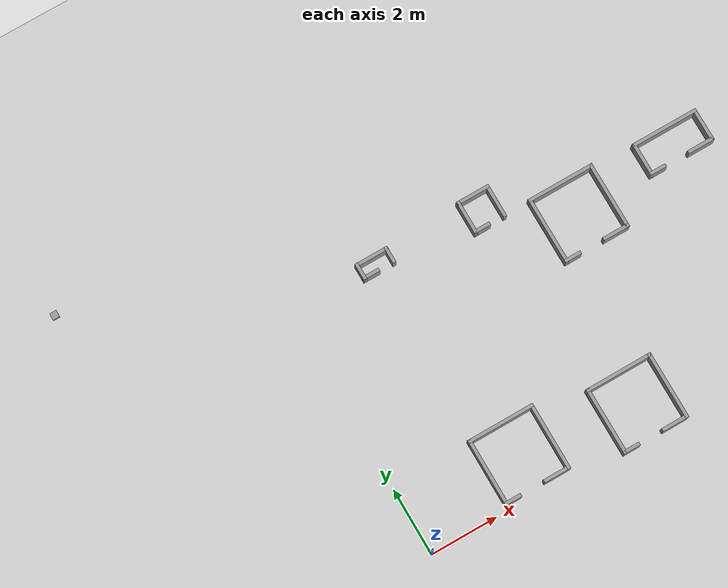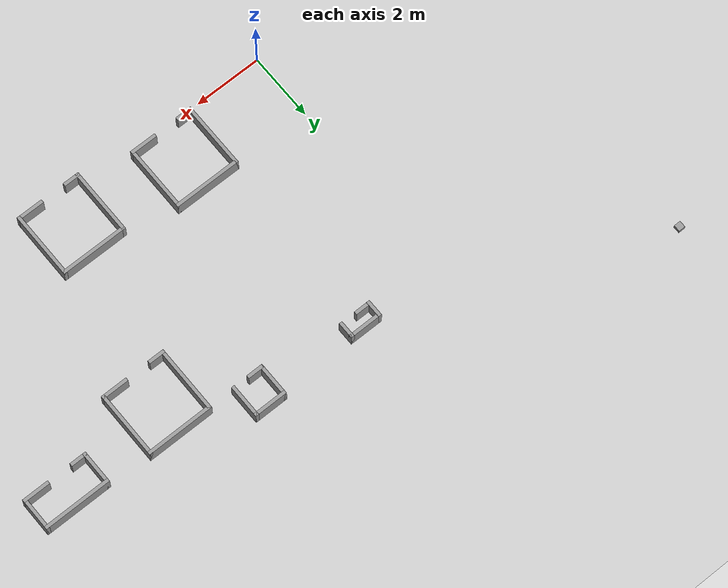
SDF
<sdf version="1.6">
 <world name="default">
  <model name="ground_plane">
   <static>1</static>
   <link name="link">
    <collision name="collision">
     <geometry><plane><normal>0 0 1</normal><size>30 30</size></plane></geometry>
     <surface>
      <contact><collide_bitmask>65535</collide_bitmask></contact>
      <friction><ode><mu>100</mu><mu2>50</mu2></ode></friction>
     </surface>
     <max_contacts>15</max_contacts>
    </collision>
    <visual name="visual">
     <cast_shadows>0</cast_shadows>
     <geometry><plane><normal>0 0 1</normal><size>30 30</size></plane></geometry>
     <material>
      <script><uri>file://media/materials/scripts/gazebo.material</uri><name>Gazebo/Grey</name></script>
     </material>
    </visual>
   </link>
  </model>
  <model name="shape5">
   <pose>8 5.9 0 0 -0 0</pose>
   <link name="Wall_20">
    <collision name="Wall_20_Collision">
     <geometry><box><size>2 0.1 0.5</size></box></geometry>
     <pose>0 0 0.25 0 -0 0</pose>
    </collision>
    <visual name="Wall_20_Visual">
     <pose>0 0 0.25 0 -0 0</pose>
     <geometry><box><size>2 0.1 0.5</size></box></geometry>
     <material>
      <script><uri>file://media/materials/scripts/gazebo.material</uri><name>Gazebo/Grey</name></script>
      <ambient>1 1 1 1</ambient>
     </material>
     <meta><layer>0</layer></meta>
    </visual>
    <pose>-0 0.95 0 0 -0 0</pose>
   </link>
   <link name="Wall_21">
    <collision name="Wall_21_Collision">
     <geometry><box><size>2 0.1 0.5</size></box></geometry>
     <pose>0 0 0.25 0 -0 0</pose>
    </collision>
    <visual name="Wall_21_Visual">
     <pose>0 0 0.25 0 -0 0</pose>
     <geometry><box><size>2 0.1 0.5</size></box></geometry>
     <material>
      <script><uri>file://media/materials/scripts/gazebo.material</uri><name>Gazebo/Grey</name></script>
      <ambient>1 1 1 1</ambient>
     </material>
     <meta><layer>0</layer></meta>
    </visual>
    <pose>0.95 0 0 0 -0 -1.5708</pose>
   </link>
   <link name="Wall_22">
    <collision name="Wall_22_Collision">
     <geometry><box><size>0.8 0.1 0.5</size></box></geometry>
     <pose>0 0 0.25 0 -0 0</pose>
    </collision>
    <visual name="Wall_22_Visual">
     <pose>0 0 0.25 0 -0 0</pose>
     <geometry><box><size>0.8 0.1 0.5</size></box></geometry>
     <material>
      <script><uri>file://media/materials/scripts/gazebo.material</uri><name>Gazebo/Grey</name></script>
      <ambient>1 1 1 1</ambient>
     </material>
     <meta><layer>0</layer></meta>
    </visual>
    <pose>0.6 -0.95 0 0 -0 3.14159</pose>
   </link>
   <link name="Wall_24">
    <collision name="Wall_24_Collision">
     <geometry><box><size>2 0.1 0.5</size></box></geometry>
     <pose>0 0 0.25 0 -0 0</pose>
    </collision>
    <visual name="Wall_24_Visual">
     <pose>0 0 0.25 0 -0 0</pose>
     <geometry><box><size>2 0.1 0.5</size></box></geometry>
     <material>
      <script><uri>file://media/materials/scripts/gazebo.material</uri><name>Gazebo/Grey</name></script>
      <ambient>1 1 1 1</ambient>
     </material>
     <meta><layer>0</layer></meta>
    </visual>
    <pose>-0.95 0 0 0 -0 -1.5708</pose>
   </link>
   <link name="Wall_25">
    <collision name="Wall_25_Collision">
     <geometry><box><size>0.5 0.1 0.5</size></box></geometry>
     <pose>0 0 0.25 0 -0 0</pose>
    </collision>
    <visual name="Wall_25_Visual">
     <pose>0 0 0.25 0 -0 0</pose>
     <geometry><box><size>0.5 0.1 0.5</size></box></geometry>
     <material>
      <script><uri>file://media/materials/scripts/gazebo.material</uri><name>Gazebo/Grey</name></script>
      <ambient>1 1 1 1</ambient>
     </material>
     <meta><layer>0</layer></meta>
    </visual>
    <pose>-0.75 -0.95 0 0 -0 0</pose>
   </link>
   <static>1</static>
  </model>
  <model name="shape5">
   <pose>6.7 0.7 0 0 -0 0</pose>
   <link name="Wall_20">
    <collision name="Wall_20_Collision">
     <geometry><box><size>2 0.1 0.5</size></box></geometry>
     <pose>0 0 0.25 0 -0 0</pose>
    </collision>
    <visual name="Wall_20_Visual">
     <pose>0 0 0.25 0 -0 0</pose>
     <geometry><box><size>2 0.1 0.5</size></box></geometry>
     <material>
      <script><uri>file://media/materials/scripts/gazebo.material</uri><name>Gazebo/Grey</name></script>
      <ambient>1 1 1 1</ambient>
     </material>
     <meta><layer>0</layer></meta>
    </visual>
    <pose>-0 0.95 0 0 -0 0</pose>
   </link>
   <link name="Wall_21">
    <collision name="Wall_21_Collision">
     <geometry><box><size>2 0.1 0.5</size></box></geometry>
     <pose>0 0 0.25 0 -0 0</pose>
    </collision>
    <visual name="Wall_21_Visual">
     <pose>0 0 0.25 0 -0 0</pose>
     <geometry><box><size>2 0.1 0.5</size></box></geometry>
     <material>
      <script><uri>file://media/materials/scripts/gazebo.material</uri><name>Gazebo/Grey</name></script>
      <ambient>1 1 1 1</ambient>
     </material>
     <meta><layer>0</layer></meta>
    </visual>
    <pose>0.95 0 0 0 -0 -1.5708</pose>
   </link>
   <link name="Wall_22">
    <collision name="Wall_22_Collision">
     <geometry><box><size>0.8 0.1 0.5</size></box></geometry>
     <pose>0 0 0.25 0 -0 0</pose>
    </collision>
    <visual name="Wall_22_Visual">
     <pose>0 0 0.25 0 -0 0</pose>
     <geometry><box><size>0.8 0.1 0.5</size></box></geometry>
     <material>
      <script><uri>file://media/materials/scripts/gazebo.material</uri><name>Gazebo/Grey</name></script>
      <ambient>1 1 1 1</ambient>
     </material>
     <meta><layer>0</layer></meta>
    </visual>
    <pose>0.6 -0.95 0 0 -0 3.14159</pose>
   </link>
   <link name="Wall_24">
    <collision name="Wall_24_Collision">
     <geometry><box><size>2 0.1 0.5</size></box></geometry>
     <pose>0 0 0.25 0 -0 0</pose>
    </collision>
    <visual name="Wall_24_Visual">
     <pose>0 0 0.25 0 -0 0</pose>
     <geometry><box><size>2 0.1 0.5</size></box></geometry>
     <material>
      <script><uri>file://media/materials/scripts/gazebo.material</uri><name>Gazebo/Grey</name></script>
      <ambient>1 1 1 1</ambient>
     </material>
     <meta><layer>0</layer></meta>
    </visual>
    <pose>-0.95 0 0 0 -0 -1.5708</pose>
   </link>
   <link name="Wall_25">
    <collision name="Wall_25_Collision">
     <geometry><box><size>0.5 0.1 0.5</size></box></geometry>
     <pose>0 0 0.25 0 -0 0</pose>
    </collision>
    <visual name="Wall_25_Visual">
     <pose>0 0 0.25 0 -0 0</pose>
     <geometry><box><size>0.5 0.1 0.5</size></box></geometry>
     <material>
      <script><uri>file://media/materials/scripts/gazebo.material</uri><name>Gazebo/Grey</name></script>
      <ambient>1 1 1 1</ambient>
     </material>
     <meta><layer>0</layer></meta>
    </visual>
    <pose>-0.75 -0.95 0 0 -0 0</pose>
   </link>
   <static>1</static>
  </model>
  <model name="shape1">
   <pose>11.2 6.3 0 0 -0 0</pose>
   <link name="Wall_0">
    <collision name="Wall_0_Collision">
     <geometry><box><size>2 0.1 0.5</size></box></geometry>
     <pose>0 0 0.25 0 -0 0</pose>
    </collision>
    <visual name="Wall_0_Visual">
     <pose>0 0 0.25 0 -0 0</pose>
     <geometry><box><size>2 0.1 0.5</size></box></geometry>
     <material>
      <script><uri>file://media/materials/scripts/gazebo.material</uri><name>Gazebo/Grey</name></script>
      <ambient>1 1 1 1</ambient>
     </material>
     <meta><layer>0</layer></meta>
    </visual>
    <pose>0 0.45 0 0 -0 0</pose>
   </link>
   <link name="Wall_1">
    <collision name="Wall_1_Collision">
     <geometry><box><size>1 0.1 0.5</size></box></geometry>
     <pose>0 0 0.25 0 -0 0</pose>
    </collision>
    <visual name="Wall_1_Visual">
     <pose>0 0 0.25 0 -0 0</pose>
     <geometry><box><size>1 0.1 0.5</size></box></geometry>
     <material>
      <script><uri>file://media/materials/scripts/gazebo.material</uri><name>Gazebo/Grey</name></script>
      <ambient>1 1 1 1</ambient>
     </material>
     <meta><layer>0</layer></meta>
    </visual>
    <pose>0.95 -0 0 0 -0 -1.5708</pose>
   </link>
   <link name="Wall_2">
    <collision name="Wall_2_Collision">
     <geometry><box><size>0.8 0.1 0.5</size></box></geometry>
     <pose>0 0 0.25 0 -0 0</pose>
    </collision>
    <visual name="Wall_2_Visual">
     <pose>0 0 0.25 0 -0 0</pose>
     <geometry><box><size>0.8 0.1 0.5</size></box></geometry>
     <material>
      <script><uri>file://media/materials/scripts/gazebo.material</uri><name>Gazebo/Grey</name></script>
      <ambient>1 1 1 1</ambient>
     </material>
     <meta><layer>0</layer></meta>
    </visual>
    <pose>0.6 -0.45 0 0 -0 3.14159</pose>
   </link>
   <link name="Wall_4">
    <collision name="Wall_4_Collision">
     <geometry><box><size>1 0.1 0.5</size></box></geometry>
     <pose>0 0 0.25 0 -0 0</pose>
    </collision>
    <visual name="Wall_4_Visual">
     <pose>0 0 0.25 0 -0 0</pose>
     <geometry><box><size>1 0.1 0.5</size></box></geometry>
     <material>
      <script><uri>file://media/materials/scripts/gazebo.material</uri><name>Gazebo/Grey</name></script>
      <ambient>1 1 1 1</ambient>
     </material>
     <meta><layer>0</layer></meta>
    </visual>
    <pose>-0.95 -0 0 0 -0 -1.5708</pose>
   </link>
   <link name="Wall_5">
    <collision name="Wall_5_Collision">
     <geometry><box><size>0.499474 0.1 0.5</size></box></geometry>
     <pose>0 0 0.25 0 -0 0</pose>
    </collision>
    <visual name="Wall_5_Visual">
     <pose>0 0 0.25 0 -0 0</pose>
     <geometry><box><size>0.499474 0.1 0.5</size></box></geometry>
     <material>
      <script><uri>file://media/materials/scripts/gazebo.material</uri><name>Gazebo/Grey</name></script>
      <ambient>1 1 1 1</ambient>
     </material>
     <meta><layer>0</layer></meta>
    </visual>
    <pose>-0.75 -0.45 0 0 -0 0</pose>
   </link>
   <static>1</static>
  </model>
  <model name="shape0">
   <pose>2.6 7.45 0 0 -0 0</pose>
   <link name="Wall_0">
    <pose>0 0.2 0 0 -0 0</pose>
    <inertial>
     <mass>1</mass>
     <inertia><ixx>1</ixx><ixy>0</ixy><ixz>0</ixz><iyy>1</iyy><iyz>0</iyz><izz>1</izz></inertia>
    </inertial>
    <visual name="Wall_0_Visual">
     <pose>0 0 0.25 0 -0 0</pose>
     <geometry><box><size>1 0.1 0.5</size></box></geometry>
     <material>
      <script><uri>file://media/materials/scripts/gazebo.material</uri><name>Gazebo/Grey</name></script>
      <ambient>1 1 1 1</ambient>
      <shader type="vertex"><normal_map>__default__</normal_map></shader>
      <diffuse>0.7 0.7 0.7 1</diffuse>
      <specular>0.01 0.01 0.01 1</specular>
      <emissive>0 0 0 1</emissive>
     </material>
     <meta><layer>0</layer></meta>
    </visual>
    <collision name="Wall_0_Collision">
     <pose>0 0 0.25 0 -0 0</pose>
     <geometry><box><size>1 0.1 0.5</size></box></geometry>
     <surface>
      <friction>
       <ode><mu>1</mu><mu2>1</mu2><fdir1>0 0 0</fdir1><slip1>0</slip1><slip2>0</slip2></ode>
       <torsional>
        <coefficient>1</coefficient>
        <patch_radius>0</patch_radius>
        <surface_radius>0</surface_radius>
        <use_patch_radius>1</use_patch_radius>
        <ode><slip>0</slip></ode>
       </torsional>
      </friction>
      <bounce><restitution_coefficient>0</restitution_coefficient><threshold>1e+06</threshold></bounce>
      <contact>
       <collide_without_contact>0</collide_without_contact>
       <collide_without_contact_bitmask>1</collide_without_contact_bitmask>
       <collide_bitmask>1</collide_bitmask>
       <ode>
        <soft_cfm>0</soft_cfm>
        <soft_erp>0.2</soft_erp>
        <kp>1e+13</kp>
        <kd>1</kd>
        <max_vel>0.01</max_vel>
        <min_depth>0</min_depth>
       </ode>
       <bullet>
        <split_impulse>1</split_impulse>
        <split_impulse_penetration_threshold>-0.01</split_impulse_penetration_threshold>
        <soft_cfm>0</soft_cfm>
        <soft_erp>0.2</soft_erp>
        <kp>1e+13</kp>
        <kd>1</kd>
       </bullet>
      </contact>
     </surface>
    </collision>
   </link>
   <link name="Wall_2">
    <pose>-0.45 0 0.01 0 0 -1.5708</pose>
    <inertial>
     <mass>1</mass>
     <inertia><ixx>1</ixx><ixy>0</ixy><ixz>0</ixz><iyy>1</iyy><iyz>0</iyz><izz>1</izz></inertia>
    </inertial>
    <visual name="Wall_2_Visual">
     <pose>0 0 0.25 0 -0 0</pose>
     <geometry><box><size>0.5 0.1 0.5</size></box></geometry>
     <material>
      <script><uri>file://media/materials/scripts/gazebo.material</uri><name>Gazebo/Grey</name></script>
      <ambient>1 1 1 1</ambient>
      <shader type="vertex"><normal_map>__default__</normal_map></shader>
      <diffuse>0.7 0.7 0.7 1</diffuse>
      <specular>0.01 0.01 0.01 1</specular>
      <emissive>0 0 0 1</emissive>
     </material>
     <meta><layer>0</layer></meta>
    </visual>
    <collision name="Wall_2_Collision">
     <pose>0 0 0.25 0 -0 0</pose>
     <geometry><box><size>0.5 0.1 0.5</size></box></geometry>
     <surface>
      <friction>
       <ode><mu>1</mu><mu2>1</mu2><fdir1>0 0 0</fdir1><slip1>0</slip1><slip2>0</slip2></ode>
       <torsional>
        <coefficient>1</coefficient>
        <patch_radius>0</patch_radius>
        <surface_radius>0</surface_radius>
        <use_patch_radius>1</use_patch_radius>
        <ode><slip>0</slip></ode>
       </torsional>
      </friction>
      <bounce><restitution_coefficient>0</restitution_coefficient><threshold>1e+06</threshold></bounce>
      <contact>
       <collide_without_contact>0</collide_without_contact>
       <collide_without_contact_bitmask>1</collide_without_contact_bitmask>
       <collide_bitmask>1</collide_bitmask>
       <ode>
        <soft_cfm>0</soft_cfm>
        <soft_erp>0.2</soft_erp>
        <kp>1e+13</kp>
        <kd>1</kd>
        <max_vel>0.01</max_vel>
        <min_depth>0</min_depth>
       </ode>
       <bullet>
        <split_impulse>1</split_impulse>
        <split_impulse_penetration_threshold>-0.01</split_impulse_penetration_threshold>
        <soft_cfm>0</soft_cfm>
        <soft_erp>0.2</soft_erp>
        <kp>1e+13</kp>
        <kd>1</kd>
       </bullet>
      </contact>
     </surface>
    </collision>
   </link>
   <link name="Wall_4">
    <pose>0.45 0 0 0 0 -1.5708</pose>
    <inertial>
     <mass>1</mass>
     <inertia><ixx>1</ixx><ixy>0</ixy><ixz>0</ixz><iyy>1</iyy><iyz>0</iyz><izz>1</izz></inertia>
    </inertial>
    <visual name="Wall_4_Visual">
     <pose>0 0 0.25 0 -0 0</pose>
     <geometry><box><size>0.5 0.1 0.5</size></box></geometry>
     <material>
      <script><uri>file://media/materials/scripts/gazebo.material</uri><name>Gazebo/Grey</name></script>
      <ambient>1 1 1 1</ambient>
      <shader type="vertex"><normal_map>__default__</normal_map></shader>
      <diffuse>0.7 0.7 0.7 1</diffuse>
      <specular>0.01 0.01 0.01 1</specular>
      <emissive>0 0 0 1</emissive>
     </material>
     <meta><layer>0</layer></meta>
    </visual>
    <collision name="Wall_4_Collision">
     <pose>0 0 0.25 0 -0 0</pose>
     <geometry><box><size>0.5 0.1 0.5</size></box></geometry>
     <surface>
      <friction>
       <ode><mu>1</mu><mu2>1</mu2><fdir1>0 0 0</fdir1><slip1>0</slip1><slip2>0</slip2></ode>
       <torsional>
        <coefficient>1</coefficient>
        <patch_radius>0</patch_radius>
        <surface_radius>0</surface_radius>
        <use_patch_radius>1</use_patch_radius>
        <ode><slip>0</slip></ode>
       </torsional>
      </friction>
      <bounce><restitution_coefficient>0</restitution_coefficient><threshold>1e+06</threshold></bounce>
      <contact>
       <collide_without_contact>0</collide_without_contact>
       <collide_without_contact_bitmask>1</collide_without_contact_bitmask>
       <collide_bitmask>1</collide_bitmask>
       <ode>
        <soft_cfm>0</soft_cfm>
        <soft_erp>0.2</soft_erp>
        <kp>1e+13</kp>
        <kd>1</kd>
        <max_vel>0.01</max_vel>
        <min_depth>0</min_depth>
       </ode>
       <bullet>
        <split_impulse>1</split_impulse>
        <split_impulse_penetration_threshold>-0.01</split_impulse_penetration_threshold>
        <soft_cfm>0</soft_cfm>
        <soft_erp>0.2</soft_erp>
        <kp>1e+13</kp>
        <kd>1</kd>
       </bullet>
      </contact>
     </surface>
    </collision>
   </link>
   <link name="Wall_7">
    <pose>-0.25 -0.2 0 0 -0 0</pose>
    <inertial>
     <mass>1</mass>
     <inertia><ixx>1</ixx><ixy>0</ixy><ixz>0</ixz><iyy>1</iyy><iyz>0</iyz><izz>1</izz></inertia>
    </inertial>
    <visual name="Wall_7_Visual">
     <pose>0 0 0.25 0 -0 0</pose>
     <geometry><box><size>0.5 0.1 0.5</size></box></geometry>
     <material>
      <script><uri>file://media/materials/scripts/gazebo.material</uri><name>Gazebo/Grey</name></script>
      <ambient>1 1 1 1</ambient>
      <shader type="vertex"><normal_map>__default__</normal_map></shader>
      <diffuse>0.7 0.7 0.7 1</diffuse>
      <specular>0.01 0.01 0.01 1</specular>
      <emissive>0 0 0 1</emissive>
     </material>
     <meta><layer>0</layer></meta>
    </visual>
    <collision name="Wall_7_Collision">
     <pose>0 0 0.25 0 -0 0</pose>
     <geometry><box><size>0.5 0.1 0.5</size></box></geometry>
     <surface>
      <friction>
       <ode><mu>1</mu><mu2>1</mu2><fdir1>0 0 0</fdir1><slip1>0</slip1><slip2>0</slip2></ode>
       <torsional>
        <coefficient>1</coefficient>
        <patch_radius>0</patch_radius>
        <surface_radius>0</surface_radius>
        <use_patch_radius>1</use_patch_radius>
        <ode><slip>0</slip></ode>
       </torsional>
      </friction>
      <bounce><restitution_coefficient>0</restitution_coefficient><threshold>1e+06</threshold></bounce>
      <contact>
       <collide_without_contact>0</collide_without_contact>
       <collide_without_contact_bitmask>1</collide_without_contact_bitmask>
       <collide_bitmask>1</collide_bitmask>
       <ode>
        <soft_cfm>0</soft_cfm>
        <soft_erp>0.2</soft_erp>
        <kp>1e+13</kp>
        <kd>1</kd>
        <max_vel>0.01</max_vel>
        <min_depth>0</min_depth>
       </ode>
       <bullet>
        <split_impulse>1</split_impulse>
        <split_impulse_penetration_threshold>-0.01</split_impulse_penetration_threshold>
        <soft_cfm>0</soft_cfm>
        <soft_erp>0.2</soft_erp>
        <kp>1e+13</kp>
        <kd>1</kd>
       </bullet>
      </contact>
     </surface>
    </collision>
   </link>
   <static>1</static>
  </model>
  <model name="shape5">
   <pose>3.3 1.1 0 0 -0 0</pose>
   <link name="Wall_20">
    <collision name="Wall_20_Collision">
     <geometry><box><size>2 0.1 0.5</size></box></geometry>
     <pose>0 0 0.25 0 -0 0</pose>
    </collision>
    <visual name="Wall_20_Visual">
     <pose>0 0 0.25 0 -0 0</pose>
     <geometry><box><size>2 0.1 0.5</size></box></geometry>
     <material>
      <script><uri>file://media/materials/scripts/gazebo.material</uri><name>Gazebo/Grey</name></script>
      <ambient>1 1 1 1</ambient>
     </material>
     <meta><layer>0</layer></meta>
    </visual>
    <pose>-0 0.95 0 0 -0 0</pose>
   </link>
   <link name="Wall_21">
    <collision name="Wall_21_Collision">
     <geometry><box><size>2 0.1 0.5</size></box></geometry>
     <pose>0 0 0.25 0 -0 0</pose>
    </collision>
    <visual name="Wall_21_Visual">
     <pose>0 0 0.25 0 -0 0</pose>
     <geometry><box><size>2 0.1 0.5</size></box></geometry>
     <material>
      <script><uri>file://media/materials/scripts/gazebo.material</uri><name>Gazebo/Grey</name></script>
      <ambient>1 1 1 1</ambient>
     </material>
     <meta><layer>0</layer></meta>
    </visual>
    <pose>0.95 0 0 0 -0 -1.5708</pose>
   </link>
   <link name="Wall_22">
    <collision name="Wall_22_Collision">
     <geometry><box><size>0.8 0.1 0.5</size></box></geometry>
     <pose>0 0 0.25 0 -0 0</pose>
    </collision>
    <visual name="Wall_22_Visual">
     <pose>0 0 0.25 0 -0 0</pose>
     <geometry><box><size>0.8 0.1 0.5</size></box></geometry>
     <material>
      <script><uri>file://media/materials/scripts/gazebo.material</uri><name>Gazebo/Grey</name></script>
      <ambient>1 1 1 1</ambient>
     </material>
     <meta><layer>0</layer></meta>
    </visual>
    <pose>0.6 -0.95 0 0 -0 3.14159</pose>
   </link>
   <link name="Wall_24">
    <collision name="Wall_24_Collision">
     <geometry><box><size>2 0.1 0.5</size></box></geometry>
     <pose>0 0 0.25 0 -0 0</pose>
    </collision>
    <visual name="Wall_24_Visual">
     <pose>0 0 0.25 0 -0 0</pose>
     <geometry><box><size>2 0.1 0.5</size></box></geometry>
     <material>
      <script><uri>file://media/materials/scripts/gazebo.material</uri><name>Gazebo/Grey</name></script>
      <ambient>1 1 1 1</ambient>
     </material>
     <meta><layer>0</layer></meta>
    </visual>
    <pose>-0.95 0 0 0 -0 -1.5708</pose>
   </link>
   <link name="Wall_25">
    <collision name="Wall_25_Collision">
     <geometry><box><size>0.5 0.1 0.5</size></box></geometry>
     <pose>0 0 0.25 0 -0 0</pose>
    </collision>
    <visual name="Wall_25_Visual">
     <pose>0 0 0.25 0 -0 0</pose>
     <geometry><box><size>0.5 0.1 0.5</size></box></geometry>
     <material>
      <script><uri>file://media/materials/scripts/gazebo.material</uri><name>Gazebo/Grey</name></script>
      <ambient>1 1 1 1</ambient>
     </material>
     <meta><layer>0</layer></meta>
    </visual>
    <pose>-0.75 -0.95 0 0 -0 0</pose>
   </link>
   <static>1</static>
  </model>
  <model name="shape4">
   <pose>5.8 7.3 0 0 -0 0</pose>
   <link name="Wall_14">
    <collision name="Wall_14_Collision">
     <geometry><box><size>1 0.1 0.5</size></box></geometry>
     <pose>0 0 0.25 0 -0 0</pose>
    </collision>
    <visual name="Wall_14_Visual">
     <pose>0 0 0.25 0 -0 0</pose>
     <geometry><box><size>1 0.1 0.5</size></box></geometry>
     <material>
      <script><uri>file://media/materials/scripts/gazebo.material</uri><name>Gazebo/Grey</name></script>
      <ambient>1 1 1 1</ambient>
     </material>
     <meta><layer>0</layer></meta>
    </visual>
    <pose>-0 0.45 0 0 -0 0</pose>
   </link>
   <link name="Wall_15">
    <collision name="Wall_15_Collision">
     <geometry><box><size>1 0.1 0.5</size></box></geometry>
     <pose>0 0 0.25 0 -0 0</pose>
    </collision>
    <visual name="Wall_15_Visual">
     <pose>0 0 0.25 0 -0 0</pose>
     <geometry><box><size>1 0.1 0.5</size></box></geometry>
     <material>
      <script><uri>file://media/materials/scripts/gazebo.material</uri><name>Gazebo/Grey</name></script>
      <ambient>1 1 1 1</ambient>
     </material>
     <meta><layer>0</layer></meta>
    </visual>
    <pose>0.45 -0 0 0 -0 -1.5708</pose>
   </link>
   <link name="Wall_17">
    <collision name="Wall_17_Collision">
     <geometry><box><size>1 0.1 0.5</size></box></geometry>
     <pose>0 0 0.25 0 -0 0</pose>
    </collision>
    <visual name="Wall_17_Visual">
     <pose>0 0 0.25 0 -0 0</pose>
     <geometry><box><size>1 0.1 0.5</size></box></geometry>
     <material>
      <script><uri>file://media/materials/scripts/gazebo.material</uri><name>Gazebo/Grey</name></script>
      <ambient>1 1 1 1</ambient>
     </material>
     <meta><layer>0</layer></meta>
    </visual>
    <pose>-0.45 -0 0 0 -0 -1.5708</pose>
   </link>
   <link name="Wall_18">
    <collision name="Wall_18_Collision">
     <geometry><box><size>0.5 0.1 0.5</size></box></geometry>
     <pose>0 0 0.25 0 -0 0</pose>
    </collision>
    <visual name="Wall_18_Visual">
     <pose>0 0 0.25 0 -0 0</pose>
     <geometry><box><size>0.5 0.1 0.5</size></box></geometry>
     <material>
      <script><uri>file://media/materials/scripts/gazebo.material</uri><name>Gazebo/Grey</name></script>
      <ambient>1 1 1 1</ambient>
     </material>
     <meta><layer>0</layer></meta>
    </visual>
    <pose>-0.25 -0.45 0 0 -0 0</pose>
   </link>
   <static>1</static>
  </model>
  <model name="box_d=20">
   <link name="link_2">
    <inertial>
     <mass>1</mass>
     <inertia>
      <ixx>0.166667</ixx>
      <ixy>0</ixy>
      <ixz>0</ixz>
      <iyy>0.166667</iyy>
      <iyz>0</iyz>
      <izz>0.166667</izz>
     </inertia>
    </inertial>
    <pose>-5.5 10.6 0 0 -0 0</pose>
    <visual name="visual">
     <geometry><box><size>0.2 0.2 0.2</size></box></geometry>
     <material>
      <lighting>1</lighting>
      <script><uri>file://media/materials/scripts/gazebo.material</uri><name>Gazebo/Grey</name></script>
      <shader type="vertex"><normal_map>__default__</normal_map></shader>
      <ambient>0.3 0.3 0.3 1</ambient>
      <diffuse>0.7 0.7 0.7 1</diffuse>
      <specular>0.01 0.01 0.01 1</specular>
      <emissive>0 0 0 1</emissive>
     </material>
    </visual>
    <collision name="collision">
     <geometry><box><size>0.2 0.2 0.2</size></box></geometry>
     <surface>
      <friction>
       <ode><mu>1</mu><mu2>1</mu2><fdir1>0 0 0</fdir1><slip1>0</slip1><slip2>0</slip2></ode>
       <torsional>
        <coefficient>1</coefficient>
        <patch_radius>0</patch_radius>
        <surface_radius>0</surface_radius>
        <use_patch_radius>1</use_patch_radius>
        <ode><slip>0</slip></ode>
       </torsional>
      </friction>
      <bounce><restitution_coefficient>0</restitution_coefficient><threshold>1e+06</threshold></bounce>
      <contact>
       <collide_without_contact>0</collide_without_contact>
       <collide_without_contact_bitmask>1</collide_without_contact_bitmask>
       <collide_bitmask>1</collide_bitmask>
       <ode>
        <soft_cfm>0</soft_cfm>
        <soft_erp>0.2</soft_erp>
        <kp>1e+13</kp>
        <kd>1</kd>
        <max_vel>0.01</max_vel>
        <min_depth>0</min_depth>
       </ode>
       <bullet>
        <split_impulse>1</split_impulse>
        <split_impulse_penetration_threshold>-0.01</split_impulse_penetration_threshold>
        <soft_cfm>0</soft_cfm>
        <soft_erp>0.2</soft_erp>
        <kp>1e+13</kp>
        <kd>1</kd>
       </bullet>
      </contact>
     </surface>
    </collision>
   </link>
   <static>0</static>
  </model>
 </world>
</sdf>
